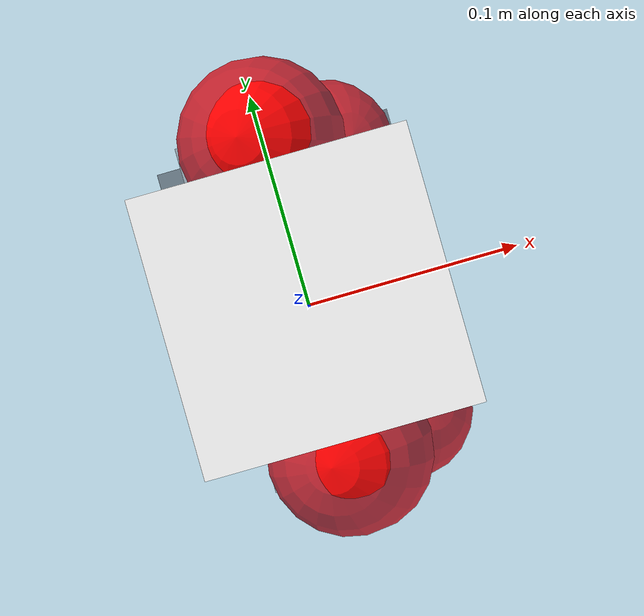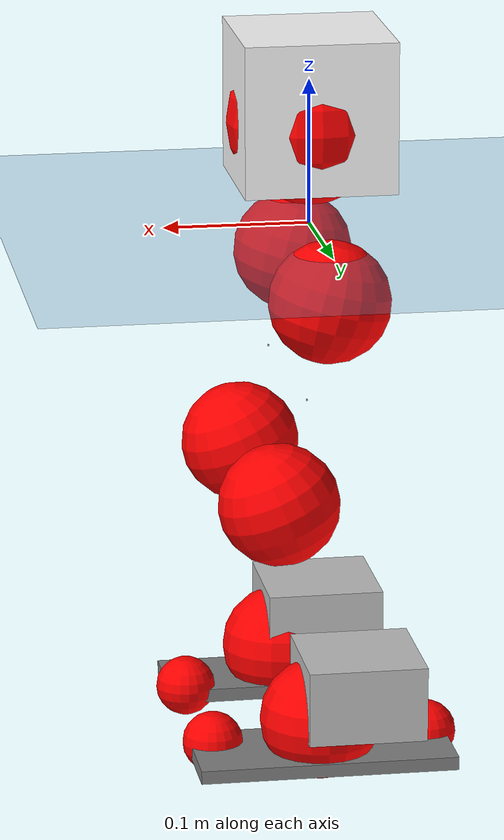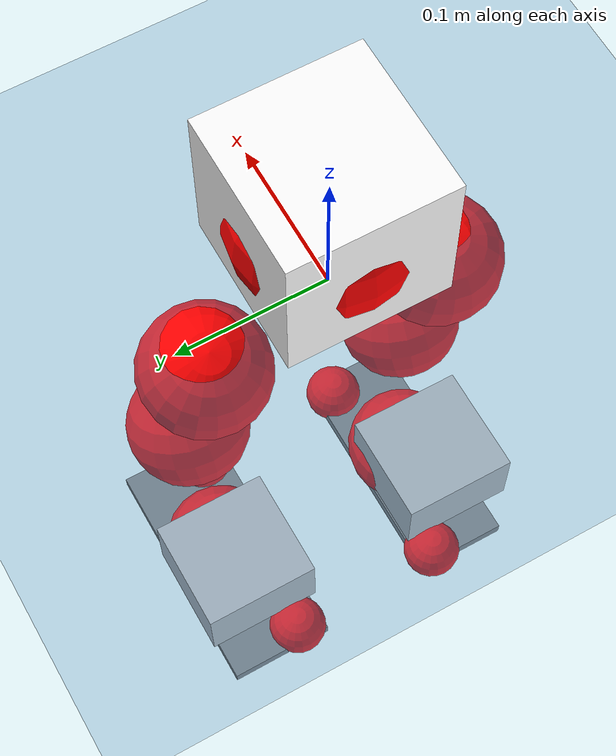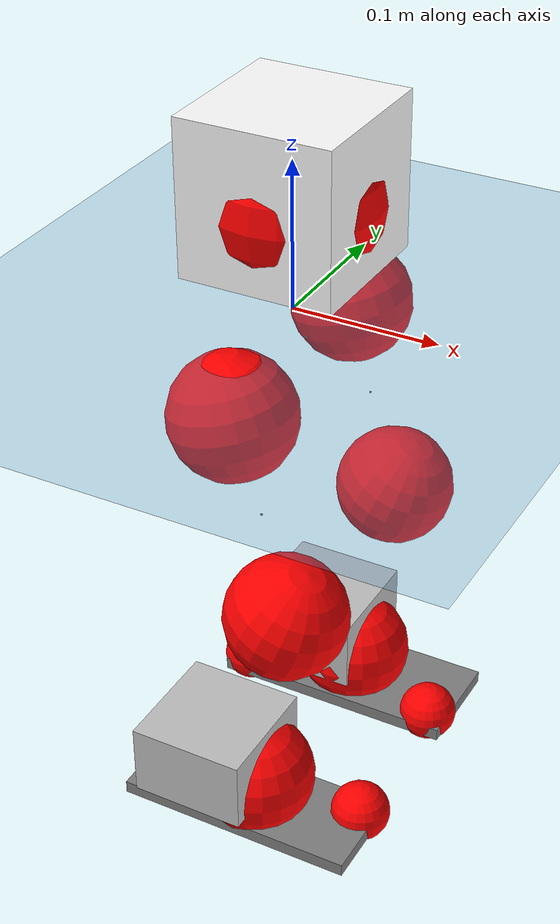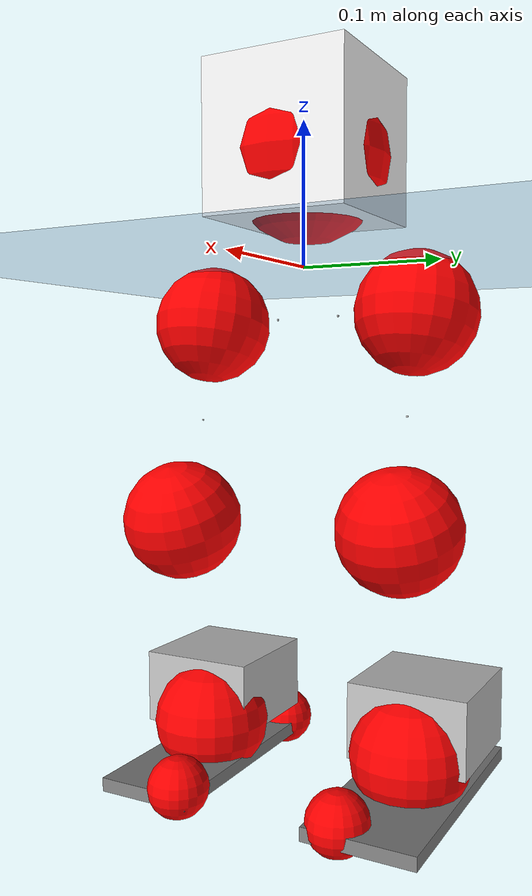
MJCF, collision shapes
<mujoco model="pi_12dof_release_v1">
  <compiler angle="radian" assetdir="assets" balanceinertia="true" inertiafromgeom="false"/>

  <option timestep="0.005" density="1.2" viscosity="2e-05"/>

  <size nkey="1"/>

  <visual>
    <quality shadowsize="8192"/>
    <map shadowclip="0.5"/>
  </visual>

  <default>
    <default class="/">
      <joint armature="0.01" damping="0.01" frictionloss="0.01"/>
      <geom contype="0" conaffinity="0" group="1" solref="-1000 -80"/>
      <site size="0.01 0.005 0.005" group="5"/>
      <general forcelimited="true" biastype="affine" gainprm="20" biasprm="0 -20 -0.5"/>
      <default class="foot">
        <geom size="0.0845 0.036 0.005" type="box" condim="6" group="4" priority="1" friction="0.9 0.2 0.2" solimp="0.015 1 0.005"/>
      </default>
      <default class="reward_collision_sphere">
        <geom group="5" rgba="1 0 0 1"/>
      </default>
    </default>
  </default>

  <asset>
    <texture type="skybox" colorspace="auto" name="//unnamed_texture_0" builtin="gradient" rgb1="0.95 0.95 0.95" rgb2="0.95 0.95 0.95" width="100" height="600"/>
    <texture type="2d" colorspace="auto" name="texplane" builtin="checker" rgb1="0.345 0.575 0.748" rgb2="0.345 0.575 0.748" markrgb="1 1 1" width="512" height="512"/>
    <material name="MatPlane" class="/" texture="texplane" texuniform="true" texrepeat="2 2" specular="0.9"/>
    <mesh name="baselink_1" class="/" file="baselink_1.STL"/>
    <mesh name="r_hip_pitch_link" class="/" file="r_hip_pitch_link.STL"/>
    <mesh name="r_hip_roll_link" class="/" file="r_hip_roll_link.STL"/>
    <mesh name="r_thigh_link" class="/" file="r_thigh_link.STL"/>
    <mesh name="r_calf_link" class="/" file="r_calf_link.STL"/>
    <mesh name="r_ankle_pitch_link" class="/" file="r_ankle_pitch_link.STL"/>
    <mesh name="r_ankle_roll_link" class="/" file="r_ankle_roll_link.STL"/>
    <mesh name="l_hip_pitch_link" class="/" file="l_hip_pitch_link.STL"/>
    <mesh name="l_hip_roll_link" class="/" file="l_hip_roll_link.STL"/>
    <mesh name="l_thigh_link" class="/" file="l_thigh_link.STL"/>
    <mesh name="l_calf_link" class="/" file="l_calf_link.STL"/>
    <mesh name="l_ankle_pitch_link" class="/" file="l_ankle_pitch_link.STL"/>
    <mesh name="l_ankle_roll_link" class="/" file="l_ankle_roll_link.STL"/>
  </asset>

  <worldbody>
    <geom name="floor" class="/" size="100 100 0.125" type="plane" group="0" material="MatPlane"/>
    <light name="toplight_shadow" class="/" pos="0 0 5" dir="0.0990148 0.0990148 -0.990148" type="directional" ambient="0.04 0.04 0.04" diffuse="0.55 0.55 0.55" specular="0.12 0.12 0.12"/>
    <light name="toplight_fill" class="/" pos="0 0 5" dir="0.0990148 0.0990148 -0.990148" type="directional" castshadow="false" ambient="0.04 0.04 0.04" diffuse="0.3 0.3 0.3" specular="0.08 0.08 0.08"/>
    <body name="trunk" pos="-0.000146557 0.00271888 0.000395298" quat="0.999999 -0.000320778 -2.55981e-05 -0.000957238">
      <inertial pos="0.00282383 -0.002579 0.0413465" quat="0.695329 0.0209809 0.00374856 0.718375" mass="2.49301" diaginertia="0.015905 0.00890019 0.00479663"/>
      <joint name="//unnamed_joint_0" type="free"/>
      <geom name="//unnamed_geom_1" class="/" type="mesh" density="0" rgba="1 1 1 1" mesh="baselink_1"/>
      <geom name="//unnamed_geom_2" class="/" size="0.0520497 0.0520497 0.0520497" pos="0 0 0.08244" type="box" rgba="1 1 1 1"/>
      <geom name="//unnamed_geom_3" class="reward_collision_sphere" size="0.0572547" pos="0 0 0.072135"/>
      <site name="imu" class="/" pos="0.0113693 -0.00358378 0.0065056" size="0.0104099"/>
      <camera name="track" class="/" pos="0 -1.98294 0" quat="0.707107 0.707107 0 0" mode="trackcom"/>
      <camera name="ego_camera" class="/" pos="0.082576 0 0.18549" quat="-0.5 -0.5 0.5 0.5"/>
      <body name="r_hip_pitch_link" pos="0.000810944 -0.0229873 -0.0361164" quat="0.992187 -1.37084e-05 -0.124756 9.56349e-05">
        <inertial pos="0.00189215 -0.0583391 -0.000159493" quat="-0.0183866 0.705775 -0.0278808 0.707648" mass="0.412752" diaginertia="0.000173873 9.31741e-05 9.7044e-05"/>
        <joint name="r_hip_pitch_joint" class="/" pos="0 0 0" axis="0.000295732 -1 0.000327551" range="-1.76668 1.28747" armature="0.0105439" damping="0.005493" frictionloss="0.0103061"/>
        <geom name="//unnamed_geom_4" class="/" type="mesh" density="0" rgba="0.75294 0.75294 0.75294 1" mesh="r_hip_pitch_link"/>
        <geom name="//unnamed_geom_5" class="/" size="0.000520497 0.000520497 0.000520497" type="box" rgba="0.75294 0.75294 0.75294 1"/>
        <body name="r_hip_roll_link" pos="-0.00177817 -0.0550787 -0.00189704" quat="0.999999 0.000930593 0.00104967 -0.000194043">
          <inertial pos="-0.00167557 0.000288032 -0.0608795" quat="0.712749 -0.0874325 -0.0798397 0.691354" mass="0.42" diaginertia="0.000516856 0.000257424 0.000146099"/>
          <joint name="r_hip_roll_joint" class="/" pos="0 0 0" axis="-0.999993 -0.00135086 0.00356085" range="-0.105685 0.498818" armature="0.0117646" damping="0" frictionloss="0.00962412"/>
          <geom name="//unnamed_geom_6" class="/" type="mesh" density="0" rgba="0.75294 0.75294 0.75294 1" mesh="r_hip_roll_link"/>
          <geom name="//unnamed_geom_7" class="/" size="0.000520497 0.000520497 0.000520497" type="box" rgba="0.75294 0.75294 0.75294 1"/>
          <geom name="//unnamed_geom_8" class="reward_collision_sphere" size="0.0416398"/>
          <body name="r_thigh_link" pos="3.9367e-05 0.00202923 -0.070716" quat="1 0.000656315 -6.23393e-05 0.000104998">
            <inertial pos="0.0029208 -0.00154109 -0.0494095" quat="0.735972 0.677003 -0.00354619 0.000288985" mass="0.134376" diaginertia="0.000204636 9.31136e-05 6.87977e-05"/>
            <joint name="r_thigh_joint" class="/" pos="0 0 0" axis="0.012132 0.0047874 -0.999915" stiffness="0.01445" range="-0.270821 0.571771" armature="0.0103915" damping="0.00280855" frictionloss="0.0090033"/>
            <geom name="//unnamed_geom_9" class="/" type="mesh" density="0" rgba="0.75294 0.75294 0.75294 1" mesh="r_thigh_link"/>
            <geom name="//unnamed_geom_10" class="/" size="0.000520497 0.000520497 0.000520497" type="box" rgba="0.75294 0.75294 0.75294 1"/>
            <body name="r_calf_link" pos="0.00187346 -0.00484087 -0.0728912" quat="0.947598 -8.27006e-06 0.319466 -0.000221392">
              <inertial pos="-0.00168374 0.00177402 -0.0711757" quat="0.999889 -0.00939467 0.00861383 0.00777465" mass="0.914791" diaginertia="0.00566284 0.00322685 0.000200582"/>
              <joint name="r_calf_joint" class="/" pos="0 0 0" axis="-0.00801563 -0.999952 0.00563362" range="-1.64805 0.651218" armature="0.0116654" damping="0.000469186" frictionloss="0.00982883"/>
              <geom name="//unnamed_geom_11" class="/" type="mesh" density="0" rgba="0.75294 0.75294 0.75294 1" mesh="r_calf_link"/>
              <geom name="//unnamed_geom_12" class="/" size="0.000520497 0.000520497 0.000520497" type="box" rgba="0.75294 0.75294 0.75294 1"/>
              <geom name="//unnamed_geom_13" class="reward_collision_sphere" size="0.0416398"/>
              <body name="r_ankle_pitch_link" pos="0.000203773 -0.00108063 -0.142261" quat="0.980063 -6.34684e-05 -0.198685 -0.000107204">
                <inertial pos="0.00266339 0.00101135 0.00176619" quat="0.00334464 0.706482 -0.000362737 0.707723" mass="0.204494" diaginertia="0.000500889 0.000222289 0.000144191"/>
                <joint name="r_ankle_pitch_joint" class="/" pos="0 0 0" axis="-0.00993605 -0.99994 -0.00461644" stiffness="0.00490216" range="-1.24201 0.505571" armature="0.0102071" damping="0.020925" frictionloss="0.0095846"/>
                <geom name="//unnamed_geom_14" class="/" type="mesh" density="0" rgba="0.75294 0.75294 0.75294 1" mesh="r_ankle_pitch_link"/>
                <geom name="//unnamed_geom_15" class="/" size="0.0405988 0.0416398 0.0260249" type="box" rgba="0.75294 0.75294 0.75294 1"/>
                <body name="r_ankle_roll_link" pos="0.0825258 0.00602892 9.91469e-05" quat="1 -0.000446387 0.000133379 0.000657103">
                  <inertial pos="-0.0286807 -0.00178667 -0.0144056" quat="0.555651 0.430972 0.439299 0.559045" mass="0.574623" diaginertia="0.0018681 0.000979684 0.000318741"/>
                  <joint name="r_ankle_roll_joint" class="/" pos="0 0 0" axis="-0.999963 0.00169337 -0.00848122" range="-0.153484 0.133891" armature="0.0115428" damping="0" frictionloss="0.00988263"/>
                  <geom name="//unnamed_geom_16" class="/" type="mesh" density="0" rgba="0.75294 0.75294 0.75294 1" mesh="r_ankle_roll_link"/>
                  <geom name="//unnamed_geom_17" class="/" type="mesh" rgba="0.75294 0.75294 0.75294 1" mesh="r_ankle_roll_link"/>
                  <geom name="right_foot" class="foot" size="0.0855583 0.0336086 0.0046566" pos="-0.0561517 0 -0.045342"/>
                  <geom name="//unnamed_geom_19" class="reward_collision_sphere" size="0.0416398" pos="-0.0550506 0 -0.02061"/>
                  <geom name="//unnamed_geom_20" class="reward_collision_sphere" size="0.0208199" pos="0.0165152 0.0198294 -0.04122"/>
                  <geom name="//unnamed_geom_21" class="reward_collision_sphere" size="0.0208199" pos="-0.132122 0.0198294 -0.04122"/>
                  <site name="right_foot" class="foot" pos="-0.0561517 0 -0.045342" size="0.0104099"/>
                </body>
              </body>
            </body>
          </body>
        </body>
      </body>
      <body name="l_hip_pitch_link" pos="-0.00317057 0.0219793 -0.0343963" quat="0.992124 0.000284683 -0.125262 0.000463981">
        <inertial pos="-3.7206e-05 0.0560885 8.79313e-05" quat="-0.0388864 0.705426 0.0288739 0.707127" mass="0.42571" diaginertia="0.000202243 0.000101471 0.00011679"/>
        <joint name="l_hip_pitch_joint" class="/" pos="0 0 0" axis="-0.00649458 0.999902 0.012442" stiffness="0.0078529" range="-1.23516 1.77236" armature="0.0111131" damping="0.0245783" frictionloss="0.0117932"/>
        <geom name="//unnamed_geom_22" class="/" type="mesh" density="0" rgba="0.75294 0.75294 0.75294 1" mesh="l_hip_pitch_link"/>
        <geom name="//unnamed_geom_23" class="/" size="0.000520497 0.000520497 0.000520497" type="box" rgba="0.75294 0.75294 0.75294 1"/>
        <body name="l_hip_roll_link" pos="0.00256874 0.0583669 -0.000420794" quat="0.999999 -0.000479915 -0.000757149 0.00108457">
          <inertial pos="0.00122416 -0.00121854 -0.0635153" quat="0.703119 -0.0736826 -0.0767894 0.703063" mass="0.456312" diaginertia="0.000536779 0.000269062 0.000156001"/>
          <joint name="l_hip_roll_joint" class="/" pos="0 0 0" axis="-0.999935 -0.0110336 0.00294759" range="-0.514873 0.167877" armature="0.0107569" damping="0" frictionloss="0.00917056"/>
          <geom name="//unnamed_geom_24" class="/" type="mesh" density="0" rgba="0.75294 0.75294 0.75294 1" mesh="l_hip_roll_link"/>
          <geom name="//unnamed_geom_25" class="/" size="0.000520497 0.000520497 0.000520497" type="box" rgba="0.75294 0.75294 0.75294 1"/>
          <geom name="//unnamed_geom_26" class="reward_collision_sphere" size="0.0416398"/>
          <body name="l_thigh_link" pos="-0.00190078 1.4664e-05 -0.069275" quat="1 -0.000950395 0.000230109 -1.68642e-05">
            <inertial pos="0.00138806 -0.0017047 -0.0515608" quat="0.669173 0.743049 -0.00857567 -0.003547" mass="0.127281" diaginertia="0.000203664 8.72178e-05 6.62012e-05"/>
            <joint name="l_thigh_joint" class="/" pos="0 0 0" axis="0.00200896 -0.0117176 -0.999929" range="-0.581477 0.290322" armature="0.0102269" damping="0.0043698" frictionloss="0.0104188"/>
            <geom name="//unnamed_geom_27" class="/" type="mesh" density="0" rgba="0.75294 0.75294 0.75294 1" mesh="l_thigh_link"/>
            <geom name="//unnamed_geom_28" class="/" size="0.000520497 0.000520497 0.000520497" type="box" rgba="0.75294 0.75294 0.75294 1"/>
            <body name="l_calf_link" pos="0.000836347 0.00298593 -0.074407" quat="0.947556 -0.000701041 0.319586 -0.001057">
              <inertial pos="0.00200257 0.00594364 -0.0716674" quat="0.999985 0.00141429 0.00485222 0.00226968" mass="0.900565" diaginertia="0.00576587 0.00337682 0.000204714"/>
              <joint name="l_calf_joint" class="/" pos="0 0 0" axis="-0.000875451 0.999999 -0.000674247" range="-0.61562 1.70646" armature="0.010335" damping="0.00620782" frictionloss="0.010137"/>
              <geom name="//unnamed_geom_29" class="/" type="mesh" density="0" rgba="0.75294 0.75294 0.75294 1" mesh="l_calf_link"/>
              <geom name="//unnamed_geom_30" class="/" size="0.000520497 0.000520497 0.000520497" type="box" rgba="0.75294 0.75294 0.75294 1"/>
              <geom name="//unnamed_geom_31" class="reward_collision_sphere" size="0.0416398"/>
              <body name="l_ankle_pitch_link" pos="0.00141473 -0.000513567 -0.144902" quat="0.980094 -0.00059325 -0.198529 0.00122988">
                <inertial pos="0.00800201 -0.000424842 0.00215276" quat="0.00216582 0.713839 0.00196986 0.700304" mass="0.191612" diaginertia="0.000498388 0.000212112 0.000134115"/>
                <joint name="l_ankle_pitch_joint" class="/" pos="0 0 0" axis="-0.013324 0.999911 0.000307015" stiffness="0.00998273" range="-0.468881 1.34361" armature="0.00907734" damping="0.00603953" frictionloss="0.0111849"/>
                <geom name="//unnamed_geom_32" class="/" type="mesh" density="0" rgba="0.75294 0.75294 0.75294 1" mesh="l_ankle_pitch_link"/>
                <geom name="//unnamed_geom_33" class="/" size="0.0405988 0.0416398 0.0260249" type="box" rgba="0.75294 0.75294 0.75294 1"/>
                <body name="l_ankle_roll_link" pos="0.0812073 -0.00123475 -0.000395169" quat="1 -0.000328845 7.6816e-05 0.000283938">
                  <inertial pos="-0.026289 0.00188879 -0.0158657" quat="0.560126 0.429459 0.432457 0.561074" mass="0.588092" diaginertia="0.00178701 0.000990426 0.000330675"/>
                  <joint name="l_ankle_roll_joint" class="/" pos="0 0 0" axis="-0.999917 0.00428644 -0.0121172" range="-0.117524 0.110898" armature="0.0108397" damping="0.00535021" frictionloss="0.0104218"/>
                  <geom name="//unnamed_geom_34" class="/" type="mesh" density="0" rgba="0.75294 0.75294 0.75294 1" mesh="l_ankle_roll_link"/>
                  <geom name="//unnamed_geom_35" class="/" type="mesh" rgba="0.75294 0.75294 0.75294 1" mesh="l_ankle_roll_link"/>
                  <geom name="left_foot" class="foot" size="0.0886406 0.0378834 0.0046021" pos="-0.0561517 0 -0.045342"/>
                  <geom name="//unnamed_geom_37" class="reward_collision_sphere" size="0.0416398" pos="-0.0550506 0 -0.02061"/>
                  <geom name="//unnamed_geom_38" class="reward_collision_sphere" size="0.0208199" pos="0.0165152 -0.0198294 -0.04122"/>
                  <geom name="//unnamed_geom_39" class="reward_collision_sphere" size="0.0208199" pos="-0.132122 -0.0198294 -0.04122"/>
                  <site name="left_foot" class="foot" pos="-0.0561517 0 -0.045342" size="0.0104099"/>
                </body>
              </body>
            </body>
          </body>
        </body>
      </body>
    </body>
  </worldbody>

  <contact>
    <pair class="/" geom1="floor" geom2="right_foot" name="//unnamed_contact_1"/>
    <pair class="/" geom1="floor" geom2="left_foot" name="//unnamed_contact_0"/>
  </contact>

  <actuator>
    <general name="r_hip_pitch_joint" class="/" joint="r_hip_pitch_joint" forcerange="-24.1899 24.1899" gainprm="20.9551" biasprm="0 -20.9551 -0.50435"/>
    <general name="r_hip_roll_joint" class="/" joint="r_hip_roll_joint" forcerange="-21.4994 21.4994" gainprm="20.9551" biasprm="0 -20.9551 -0.50435"/>
    <general name="r_thigh_joint" class="/" joint="r_thigh_joint" forcerange="-19.7165 19.7165" gainprm="20.9551" biasprm="0 -20.9551 -0.50435"/>
    <general name="r_calf_joint" class="/" joint="r_calf_joint" forcerange="-20.6393 20.6393" gainprm="20.9551" biasprm="0 -20.9551 -0.50435"/>
    <general name="r_ankle_pitch_joint" class="/" joint="r_ankle_pitch_joint" forcerange="-20.0134 20.0134" gainprm="20.9551" biasprm="0 -20.9551 -0.50435"/>
    <general name="r_ankle_roll_joint" class="/" joint="r_ankle_roll_joint" forcerange="-23.8153 23.8153" gainprm="20.9551" biasprm="0 -20.9551 -0.50435"/>
    <general name="l_hip_pitch_joint" class="/" joint="l_hip_pitch_joint" forcerange="-21.7414 21.7414" gainprm="20.9551" biasprm="0 -20.9551 -0.50435"/>
    <general name="l_hip_roll_joint" class="/" joint="l_hip_roll_joint" forcerange="-21.4696 21.4696" gainprm="20.9551" biasprm="0 -20.9551 -0.50435"/>
    <general name="l_thigh_joint" class="/" joint="l_thigh_joint" forcerange="-24.1108 24.1108" gainprm="20.9551" biasprm="0 -20.9551 -0.50435"/>
    <general name="l_calf_joint" class="/" joint="l_calf_joint" forcerange="-21.9593 21.9593" gainprm="20.9551" biasprm="0 -20.9551 -0.50435"/>
    <general name="l_ankle_pitch_joint" class="/" joint="l_ankle_pitch_joint" forcerange="-22.1789 22.1789" gainprm="20.9551" biasprm="0 -20.9551 -0.50435"/>
    <general name="l_ankle_roll_joint" class="/" joint="l_ankle_roll_joint" forcerange="-23.7433 23.7433" gainprm="20.9551" biasprm="0 -20.9551 -0.50435"/>
  </actuator>

  <sensor>
    <gyro site="imu" name="imu_angular_velocity"/>
    <velocimeter site="imu" name="imu_linear_velocity"/>
    <framelinvel objtype="site" objname="left_foot" name="left_foot_global_linear_velocity"/>
    <framelinvel objtype="site" objname="right_foot" name="right_foot_global_linear_velocity"/>
  </sensor>

  <keyframe>
    <key name="home" qpos="0 0 0.291 1 0 0 0 0.4 0 0 -0.8 0.4 0 -0.4 0 0 0.8 -0.4 0"/>
  </keyframe>
</mujoco>
